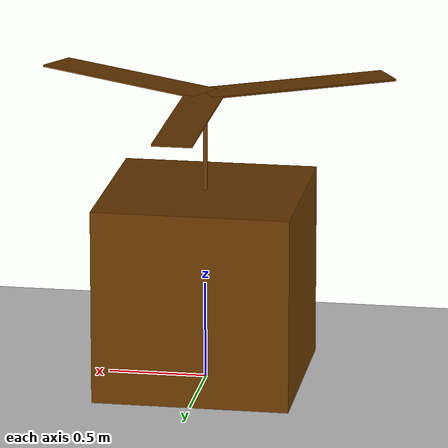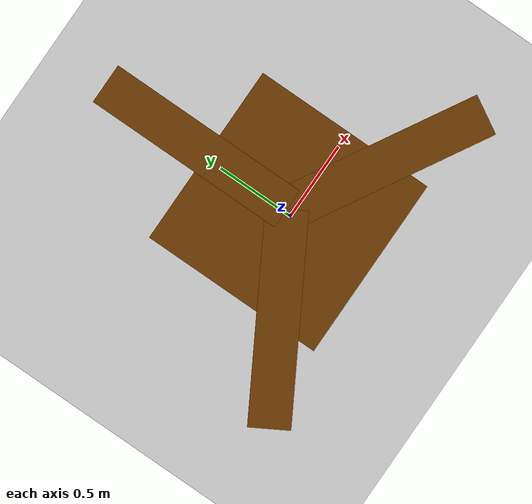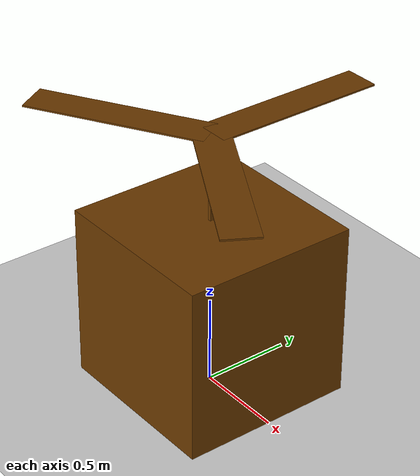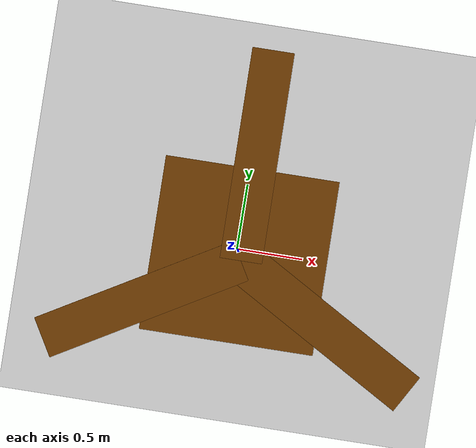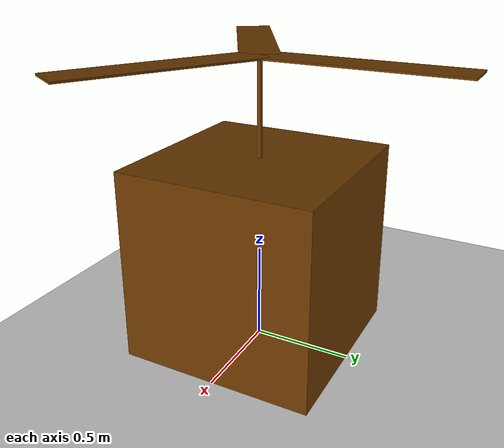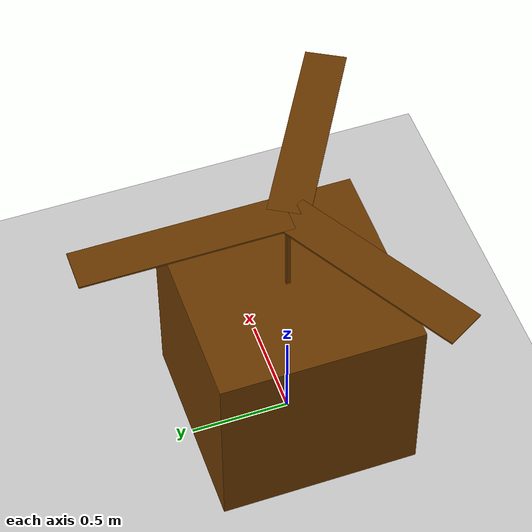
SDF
<?xml version="1.0" ?>
<sdf version="1.6">
  <world name="lift_drag">
    <plugin
      filename="gz-sim-physics-system"
      name="gz::sim::systems::Physics">
    </plugin>
    <plugin
      filename="gz-sim-user-commands-system"
      name="gz::sim::systems::UserCommands">
    </plugin>
    <plugin
      filename="gz-sim-scene-broadcaster-system"
      name="gz::sim::systems::SceneBroadcaster">
    </plugin>

    <light type="directional" name="sun">
      <cast_shadows>true</cast_shadows>
      <pose>0 0 10 0 0 0</pose>
      <diffuse>1 1 1 1</diffuse>
      <specular>0.5 0.5 0.5 1</specular>
      <attenuation>
        <range>1000</range>
        <constant>0.9</constant>
        <linear>0.01</linear>
        <quadratic>0.001</quadratic>
      </attenuation>
      <direction>-0.5 0.1 -0.9</direction>
    </light>

    <model name="ground_plane">
      <static>true</static>
      <link name="link">
        <collision name="collision">
          <geometry>
            <plane>
              <normal>0 0 1</normal>
              <size>100 100</size>
            </plane>
          </geometry>
        </collision>
        <visual name="visual">
          <geometry>
            <plane>
              <normal>0 0 1</normal>
              <size>100 100</size>
            </plane>
          </geometry>
          <material>
            <ambient>0.8 0.8 0.8 1</ambient>
            <diffuse>0.8 0.8 0.8 1</diffuse>
            <specular>0.8 0.8 0.8 1</specular>
          </material>
        </visual>
      </link>
    </model>

    <model name="lift_drag_demo_model">
      <pose>0 0 0 0 0 0</pose>
      <link name="body">
        <pose>0.0 0 0.5 0 0 0</pose>
        <inertial>
          <pose>0.0 0.0 0.0 0.0 0.0 0.0</pose>
          <inertia>
            <ixx>1.8</ixx>
            <ixy>0.0</ixy>
            <ixz>0.0</ixz>
            <iyy>1.8</iyy>
            <iyz>0.0</iyz>
            <izz>1.8</izz>
          </inertia>
          <mass>10.0</mass>
        </inertial>
        <collision name="collision">
          <geometry>
            <box>
              <size>1 1 1</size>
            </box>
          </geometry>
          <surface>
            <friction>
              <ode>
                <mu>0.1</mu>
                <mu2>0.1</mu2>
              </ode>
            </friction>
          </surface>
        </collision>
        <visual name="visual">
          <geometry>
            <box>
              <size>1 1 1</size>
            </box>
          </geometry>
          <material>
            <ambient>0.2 0.2 0.2 1.0</ambient>
            <diffuse>.421 0.225 0.0 1.0</diffuse>
          </material>
        </visual>
      </link>
      <link name="rod_1">
        <pose>0 0 1.25 0 0 0</pose>
        <inertial>
          <pose>0.0 0.0 0 0.0 0.0 0.0</pose>
          <inertia>
            <ixx>0.012</ixx>
            <ixy>0.0</ixy>
            <ixz>0.0</ixz>
            <iyy>0.012</iyy>
            <iyz>0.0</iyz>
            <izz>0.0012</izz>
          </inertia>
          <mass>1.0</mass>
        </inertial>
        <collision name="collision">
          <geometry>
            <box>
              <size>0.02 0.02 0.5</size>
            </box>
          </geometry>
        </collision>
        <visual name="visual">
          <geometry>
            <box>
              <size>0.02 0.02 0.5</size>
            </box>
          </geometry>
          <material>
            <ambient>0.3 0.3 0.3 1.0</ambient>
            <diffuse>.421 0.225 0.0 1.0</diffuse>
          </material>
        </visual>
      </link>
      <link name="blade_1">
        <pose>0 0 1.5 0.0 0 0</pose>
        <inertial>
          <pose>0.0 0.5 0 0.0 0.0 0.0</pose>
          <inertia>
            <ixx>0.0000465</ixx>
            <ixy>0.0</ixy>
            <ixz>0.0</ixz>
            <iyy>0.0000006</iyy>
            <iyz>0.0</iyz>
            <izz>0.0000470</izz>
          </inertia>
          <mass>0.01</mass>
        </inertial>
        <collision name="collision">
          <pose>0.0 0.5 0 0.0 0.0 0.0</pose>
          <geometry>
            <box>
              <size>0.2 1.0 0.01</size>
            </box>
          </geometry>
        </collision>
        <visual name="visual">
          <pose>0.0 0.5 0 0.0 0.0 0.0</pose>
          <geometry>
            <box>
              <size>0.2 1.0 0.01</size>
            </box>
          </geometry>
          <material>
            <ambient>0.5 0.2 0.2 1.0</ambient>
            <diffuse>.421 0.225 0.0 1.0</diffuse>
          </material>
        </visual>
      </link>
      <link name="blade_2">
        <pose>0 0 1.5 0.0 0 2.094395</pose>
        <inertial>
          <pose>0.0 0.5 0 0.0 0.0 0.0</pose>
          <inertia>
            <ixx>0.0000465</ixx>
            <ixy>0.0</ixy>
            <ixz>0.0</ixz>
            <iyy>0.0000006</iyy>
            <iyz>0.0</iyz>
            <izz>0.0000470</izz>
          </inertia>
          <mass>0.01</mass>
        </inertial>
        <collision name="collision">
          <pose>0.0 0.5 0 0.0 0.0 0.0</pose>
          <geometry>
            <box>
              <size>0.2 1.0 0.01</size>
            </box>
          </geometry>
        </collision>
        <visual name="visual">
          <pose>0.0 0.5 0 0.0 0.0 0</pose>
          <geometry>
            <box>
              <size>0.2 1.0 0.01</size>
            </box>
          </geometry>
          <material>
            <ambient>0.2 0.5 0.2 1.0</ambient>
            <diffuse>.421 0.225 0.0 1.0</diffuse>
          </material>
        </visual>
      </link>
      <link name="blade_3">
        <pose>0 0 1.5 0.0 0 4.188790</pose>
        <inertial>
          <pose>0.0 0.5 0 0.0 0.0 0.0</pose>
          <inertia>
            <ixx>0.0000465</ixx>
            <ixy>0.0</ixy>
            <ixz>0.0</ixz>
            <iyy>0.0000006</iyy>
            <iyz>0.0</iyz>
            <izz>0.0000470</izz>
          </inertia>
          <mass>0.01</mass>
        </inertial>
        <collision name="collision">
          <pose>0.0 0.5 0 0.0 0.0 0.0</pose>
          <geometry>
            <box>
              <size>0.2 1.0 0.01</size>
            </box>
          </geometry>
        </collision>
        <visual name="visual">
          <pose>0.0 0.5 0 0.0 0.0 0.0</pose>
          <geometry>
            <box>
              <size>0.2 1.0 0.01</size>
            </box>
          </geometry>
          <material>
            <ambient>0.5 0.2 0.2 1.0</ambient>
            <diffuse>.421 0.225 0.0 1.0</diffuse>
          </material>
        </visual>
      </link>
      <joint name="rod_1_joint" type="revolute">
        <parent>body</parent>
        <child>rod_1</child>
        <pose>0.0 0.0 0.0 0.0 0.0 0.0</pose>
        <axis>
          <limit>
            <lower>-1e16</lower>
            <upper>1e16</upper>
          </limit>
          <xyz>0.0 0.0 -1.0</xyz>
          <dynamics>
            <damping>0.0001</damping>
          </dynamics>
        </axis>
        <physics>
          <ode>
            <cfm_damping>1</cfm_damping>
          </ode>
        </physics>
      </joint>
      <joint name="blade_1_joint" type="fixed">
        <parent>rod_1</parent>
        <child>blade_1</child>
        <pose>0.0 0.0 0.0 0.0 0.0 0.0</pose>
      </joint>
      <joint name="blade_2_joint" type="fixed">
        <parent>rod_1</parent>
        <child>blade_2</child>
        <pose>0.0 0.0 0.0 0.0 0.0 0.0</pose>
      </joint>
      <joint name="blade_3_joint" type="fixed">
        <parent>rod_1</parent>
        <child>blade_3</child>
        <pose>0.0 0.0 0.0 0.0 0.0 0.0</pose>
      </joint>

      <plugin
        filename="gz-sim-joint-state-publisher-system"
        name="gz::sim::systems::JointStatePublisher"></plugin>

      <plugin
        filename="gz-sim-lift-drag-system"
        name="gz::sim::systems::LiftDrag">
        <a0>0.1</a0>
        <cla>0.1</cla>
        <cda>0.001</cda>
        <cma>0.0</cma>
        <cp>0.0 0.5 0</cp>
        <area>0.2</area>
        <air_density>1.2041</air_density>
        <forward>1 0 0</forward>
        <upward>0 0 1</upward>
        <link_name>blade_1</link_name>
      </plugin>
      <plugin
        filename="gz-sim-lift-drag-system"
        name="gz::sim::systems::LiftDrag">
        <a0>0.1</a0>
        <cla>0.1</cla>
        <cda>0.001</cda>
        <cma>0.0</cma>
        <cp>0.0 0.5 0</cp>
        <area>0.2</area>
        <air_density>1.2041</air_density>
        <forward>1 0 0</forward>
        <upward>0 0 1</upward>
        <link_name>blade_2</link_name>
      </plugin>
      <plugin
        filename="gz-sim-lift-drag-system"
        name="gz::sim::systems::LiftDrag">
        <a0>0.1</a0>
        <cla>0.1</cla>
        <cda>0.001</cda>
        <cma>0.0</cma>
        <cp>0.0 0.5 0</cp>
        <area>0.2</area>
        <air_density>1.2041</air_density>
        <forward>1 0 0</forward>
        <upward>0 0 1</upward>
        <link_name>blade_3</link_name>
      </plugin>
      <plugin
        filename="gz-sim-apply-joint-force-system"
        name="gz::sim::systems::ApplyJointForce">
        <joint_name>rod_1_joint</joint_name>
      </plugin>
    </model>
  </world>
</sdf>
